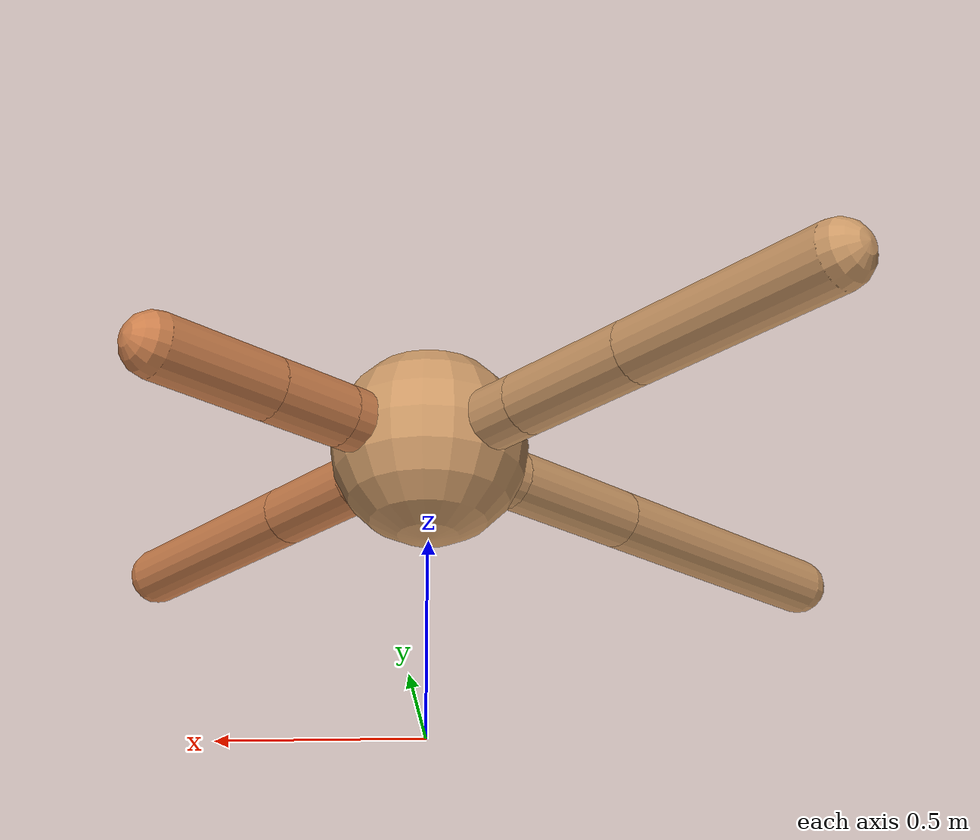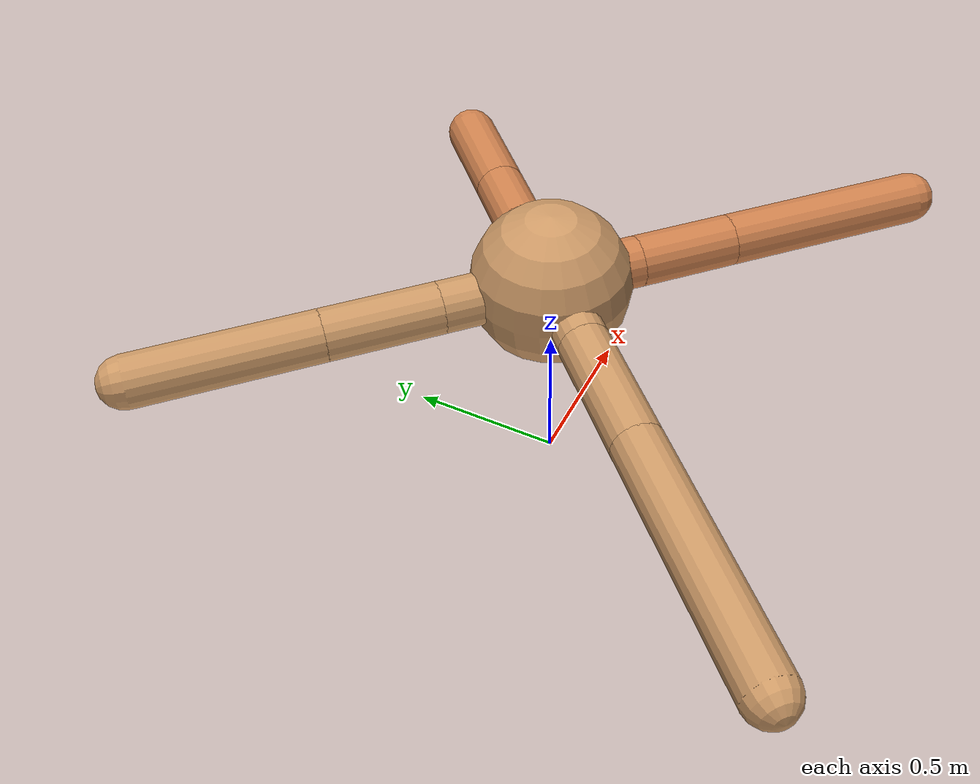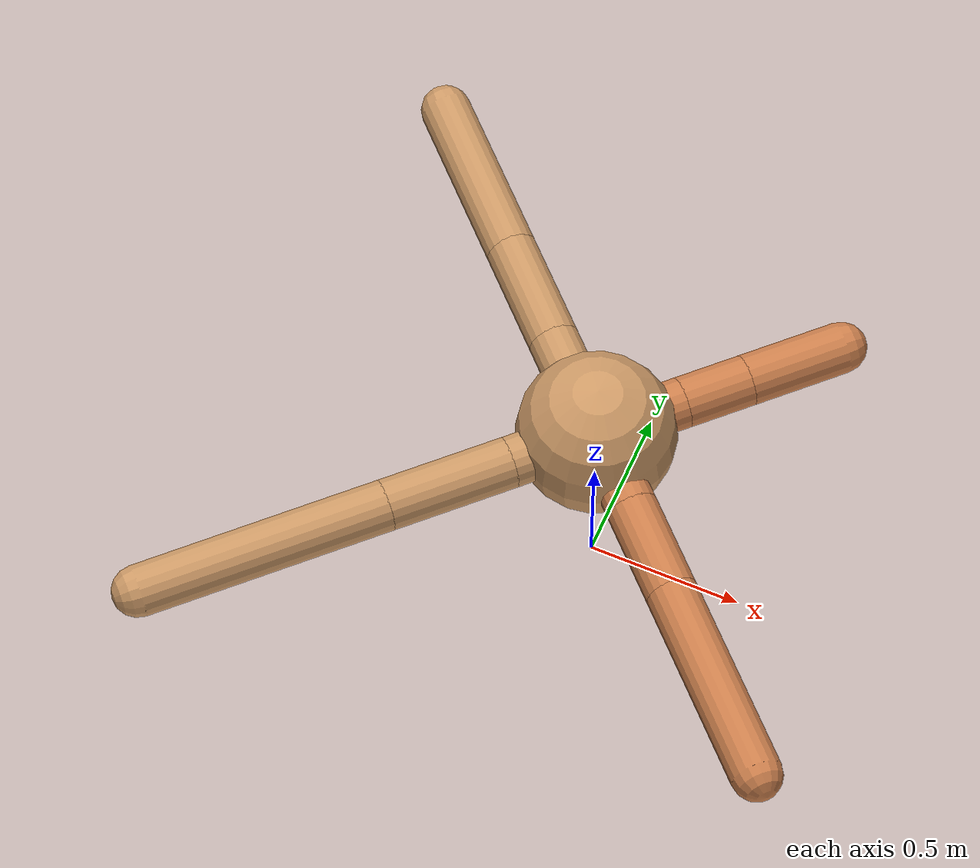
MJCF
<mujoco model="ant">
  <compiler angle="degree" coordinate="local" inertiafromgeom="true" />
  <option integrator="RK4" timestep="0.01" />
  <custom>
    <numeric data="0.0 0.0 0.55 1.0 0.0 0.0 0.0 0.0 1.0 0.0 -1.0 0.0 -1.0 0.0 1.0" name="init_qpos" />
  </custom>
  <default>
    <joint armature="1" damping="1" limited="true" />
    <geom conaffinity="0" condim="3" density="5.0" friction="1.5 0.1 0.1" margin="0.01" rgba="0.8 0.6 0.4 1" />
  </default>
  <worldbody>
    <body name="torso" pos="0 0 0.75">
      <geom name="torso_geom" pos="0 0 0" size="0.25" type="sphere" />

      <body name="front_left_leg" pos="0 0 0">
        <geom fromto="0.0 0.0 0.0 0.2 0.2 0.0" name="aux_1_geom" size="0.08" type="capsule" rgba=".8 .5 .3 1" />
        <body name="aux_1" pos="0.2 0.2 0.0">
          <joint axis="0 0 1" name="hip_1" pos="0.0 0.0 0.0" range="-40 40" type="hinge" />
          <geom fromto="0.0 0.0 0.0 0.1509388674112889 0.1509388674112889 0.0" name="left_leg_geom" size="0.08" type="capsule" rgba=".8 .5 .3 1" />
          <body pos="0.1509388674112889 0.1509388674112889 0.0" name="front_left_foot">
            <joint axis="-1 1 0" name="ankle_1" pos="0.0 0.0 0.0" range="30 100" type="hinge" />
            <geom fromto="0.0 0.0 0.0 0.22515671585037367 0.22515671585037367 0.0" name="left_ankle_geom" size="0.08" type="capsule" rgba=".8 .5 .3 1" />
          </body>
        </body>
      </body>
      <body name="front_right_leg" pos="0 0 0">
        <geom fromto="0.0 0.0 0.0 -0.24645179984464596 0.24645179984464596 0.0" name="aux_2_geom" size="0.08" type="capsule" />
        <body name="aux_2" pos="-0.24645179984464596 0.24645179984464596 0.0">
          <joint axis="0 0 1" name="hip_2" pos="0.0 0.0 0.0" range="-40 40" type="hinge" />
          <geom fromto="0.0 0.0 0.0 -0.2503597426763015 0.2503597426763015 0.0" name="right_leg_geom" size="0.08" type="capsule" />
          <body pos="-0.2503597426763015 0.2503597426763015 0.0" name="front_right_foot">
            <joint axis="1 1 0" name="ankle_2" pos="0.0 0.0 0.0" range="-100 -30" type="hinge" />
            <geom fromto="0.0 0.0 0.0 -0.3983685855512368 0.3983685855512368 0.0" name="right_ankle_geom" size="0.08" type="capsule" />
          </body>
        </body>
      </body>
      <body name="left_back_leg" pos="0 0 0">
        <geom fromto="0.0 0.0 0.0 -0.20171286372768168 -0.20171286372768168 0.0" name="aux_3_geom" size="0.08" type="capsule" />
        <body name="aux_3" pos="-0.20171286372768168 -0.20171286372768168 0.0">
          <joint axis="0 0 1" name="hip_3" pos="0.0 0.0 0.0" range="-40 40" type="hinge" />
          <geom fromto="0.0 0.0 0.0 -0.2837666339047828 -0.2837666339047828 0.0" name="back_leg_geom" size="0.08" type="capsule" />
          <body pos="-0.2837666339047828 -0.2837666339047828 0.0" name="left_back_foot">
            <joint axis="-1 1 0" name="ankle_3" pos="0.0 0.0 0.0" range="-100 -30" type="hinge" />
            <geom fromto="0.0 0.0 0.0 -0.5603520939376566 -0.5603520939376566 0.0" name="third_ankle_geom" size="0.08" type="capsule" />
          </body>
        </body>
      </body>
      <body name="right_back_leg" pos="0 0 0">
        <geom fromto="0.0 0.0 0.0 0.2 -0.2 0.0" name="aux_4_geom" size="0.08" type="capsule" rgba=".8 .5 .3 1" />
        <body name="aux_4" pos="0.2 -0.2 0.0">
          <joint axis="0 0 1" name="hip_4" pos="0.0 0.0 0.0" range="-40 40" type="hinge" />
          <geom fromto="0.0 0.0 0.0 0.21708536181358717 -0.21708536181358717 0.0" name="rightback_leg_geom" size="0.08" type="capsule" rgba=".8 .5 .3 1" />
          <body pos="0.21708536181358717 -0.21708536181358717 0.0" name="right_back_foot">
            <joint axis="1 1 0" name="ankle_4" pos="0.0 0.0 0.0" range="30 100" type="hinge" />
            <geom fromto="0.0 0.0 0.0 0.4537478056081657 -0.4537478056081657 0.0" name="fourth_ankle_geom" size="0.08" type="capsule" rgba=".8 .5 .3 1" />
          </body>
        </body>
      </body>
    </body>
  </worldbody>
  <actuator>
    <motor ctrllimited="true" ctrlrange="-1.0 1.0" joint="hip_4" gear="150" />
    <motor ctrllimited="true" ctrlrange="-1.0 1.0" joint="ankle_4" gear="150" />
    <motor ctrllimited="true" ctrlrange="-1.0 1.0" joint="hip_1" gear="150" />
    <motor ctrllimited="true" ctrlrange="-1.0 1.0" joint="ankle_1" gear="150" />
    <motor ctrllimited="true" ctrlrange="-1.0 1.0" joint="hip_2" gear="150" />
    <motor ctrllimited="true" ctrlrange="-1.0 1.0" joint="ankle_2" gear="150" />
    <motor ctrllimited="true" ctrlrange="-1.0 1.0" joint="hip_3" gear="150" />
    <motor ctrllimited="true" ctrlrange="-1.0 1.0" joint="ankle_3" gear="150" />
  </actuator>
</mujoco>
